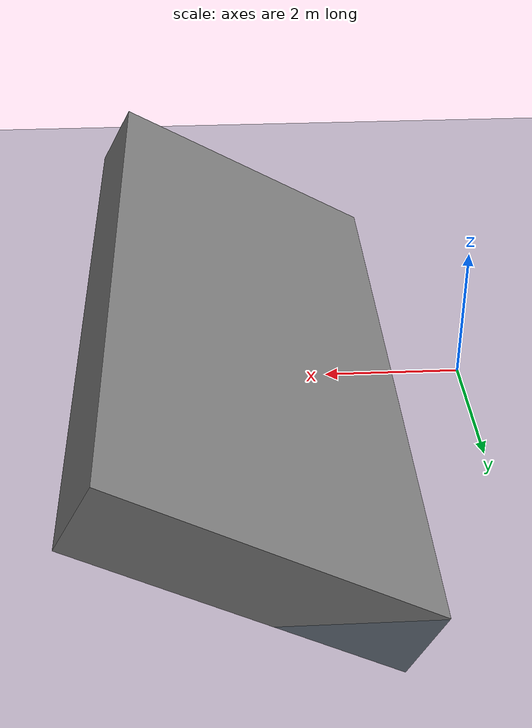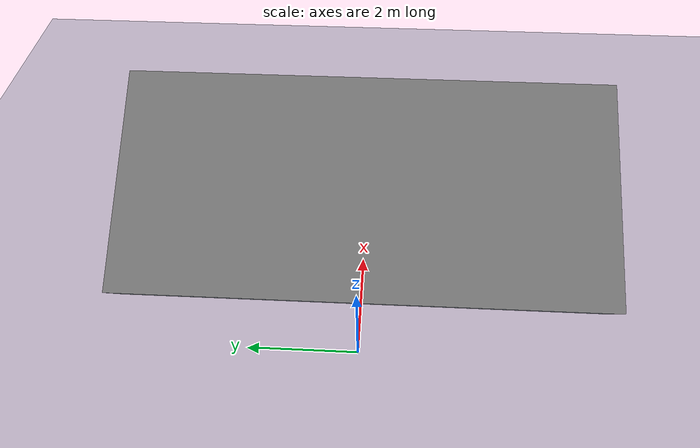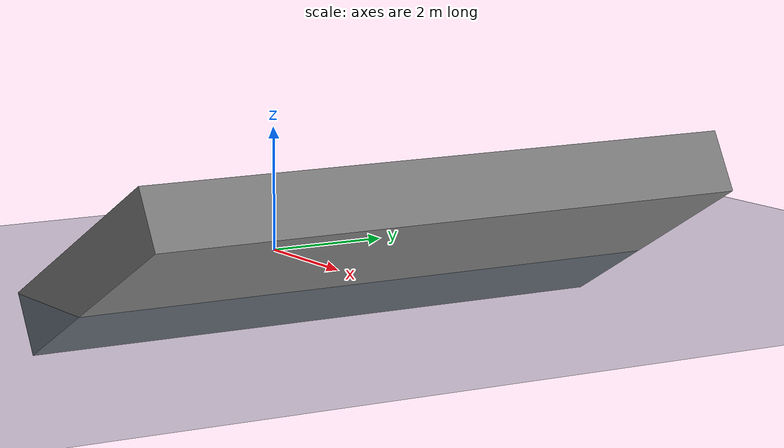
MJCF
<!-- slope=0.1+0.8*0.5/0.9=0.54, 28.56 degree -->
<mujoco model="slope_5">
  <statistic center="0 0 0.1" extent="0.8" />

  <visual>
    <headlight diffuse="0.6 0.6 0.6" ambient="0.3 0.3 0.3" specular="0 0 0" />
    <rgba haze="0.15 0.25 0.35 1" />
    <global azimuth="-130" elevation="-20" />
    <global offwidth="1920" offheight="1080"/>
  </visual>

  <asset>
    <texture type="skybox" builtin="gradient" rgb1="0.3 0.5 0.7" rgb2="0 0 0" width="512" height="3072" />
    <texture type="2d" name="groundplane" builtin="checker" mark="edge" rgb1="0.2 0.3 0.4" rgb2="0.1 0.2 0.3" markrgb="0.8 0.8 0.8" width="300" height="300" />
    <material name="groundplane" texture="groundplane" texuniform="true" texrepeat="5 5" reflectance="0.0" />
  </asset>

  <worldbody>
    <light pos="0 0 1.5" dir="0 0 -1" directional="true" />
    <geom name="floor" size="0 0 0.05" type="plane" material="groundplane" />
    <geom pos="3.2397127693021015 0.0 0.6538136987423946" type="box" size="2.278987854649098 5.0 0.5" quat="0.9689124217106447 0.0 -0.24740395925452294 0.0" />
  </worldbody>
</mujoco>
